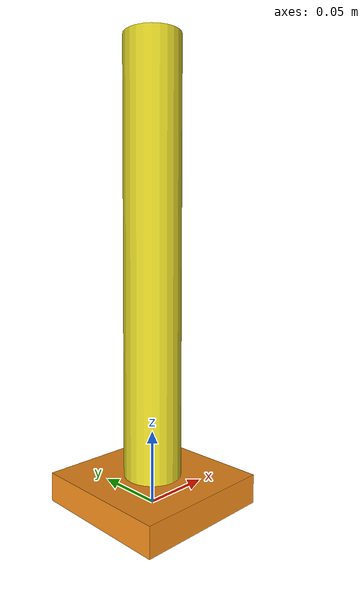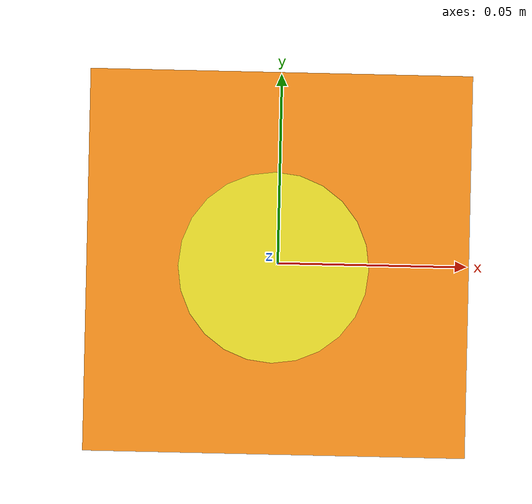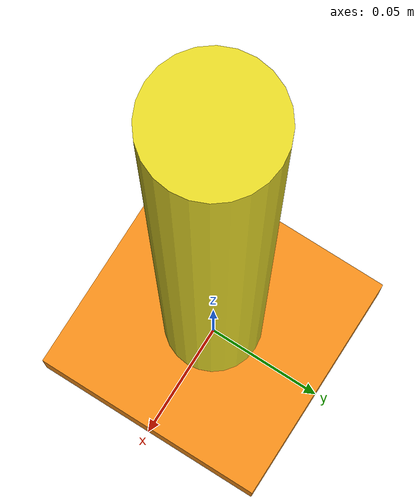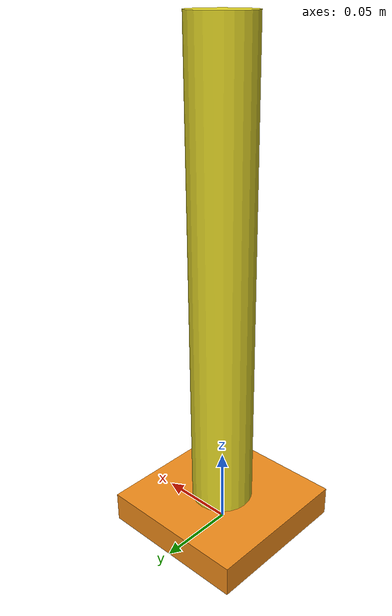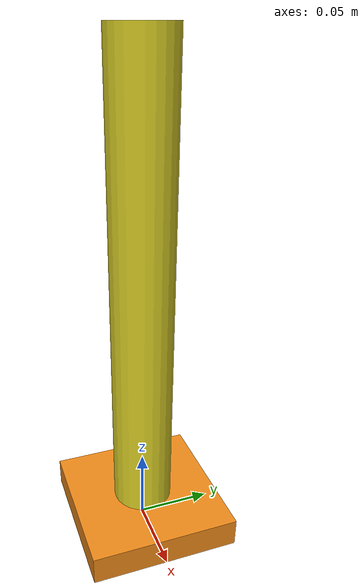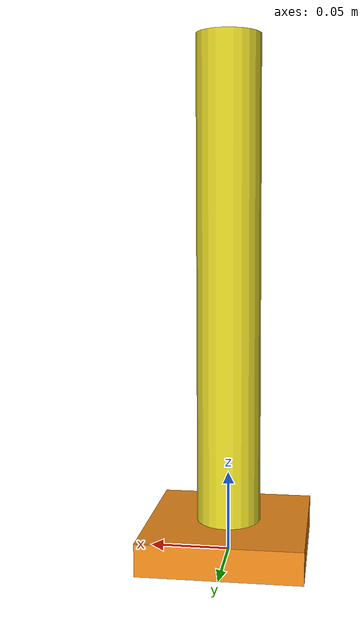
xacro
<?xml version="1.0"?>
<robot xmlns:xacro="http://www.ros.org/wiki/xacro">

    <xacro:property name="arm_base_length" value="0.1" />
    <xacro:property name="arm_base_width" value="0.1" />
    <xacro:property name="arm_base_height" value="0.02" />
    <xacro:property name="forearm_radius" value="0.02" />
    <xacro:property name="forearm_length" value="0.3" />
    <xacro:property name="hand_radius" value="0.02" />
    <xacro:property name="hand_length" value="0.3" />

    <link name="arm_base_link">
        <visual>
            <geometry>
                <box size="${arm_base_length} ${arm_base_width} ${arm_base_height}" />
            </geometry>
            <origin xyz="0 0 ${arm_base_height / 2.0}" rpy="0 0 0" />
            <material name="orange" />
        </visual>
    </link>

    <link name="forearm_link">
        <visual>
            <geometry>
                <cylinder radius="${forearm_radius}" length="${forearm_length}" />
            </geometry>
            <origin xyz="0 0 ${forearm_length / 2.0}" rpy="0 0 0" />
            <material name="yellow" />
        </visual>
    </link>

    <joint name="arm_joint1" type="revolute">
        <parent link="arm_base_link" />
        <child link="forearm_link" />
        <origin xyz="0 0 ${arm_base_height}" rpy="0 0 0" />
        <axis xyz="0 1 0" />
        <limit lower="0" upper="${2*pi}" effort="100" velocity="100" />
        <dynamics friction="0.05" damping="0.1" />
    </joint>

</robot>
